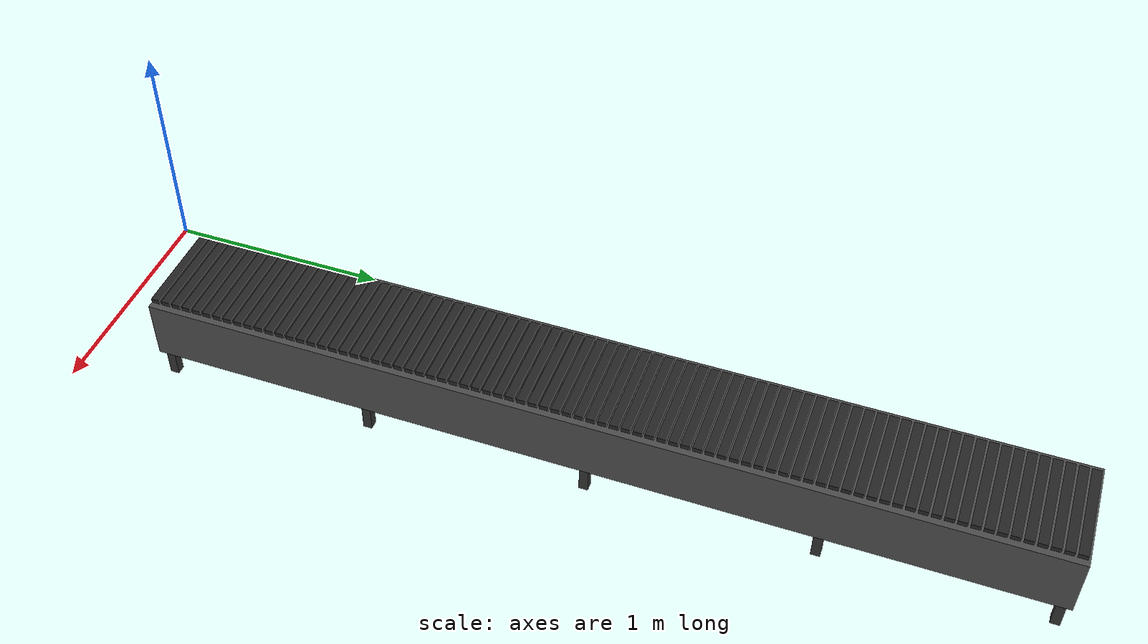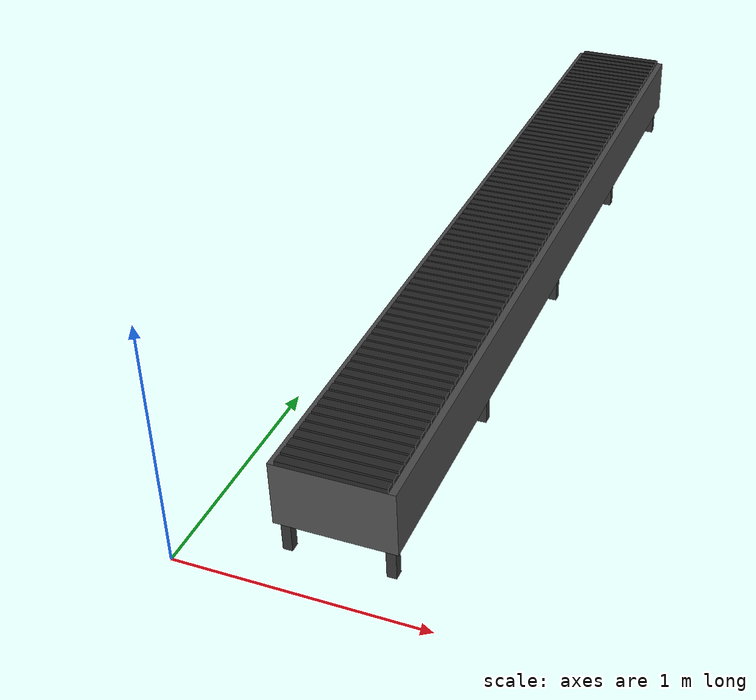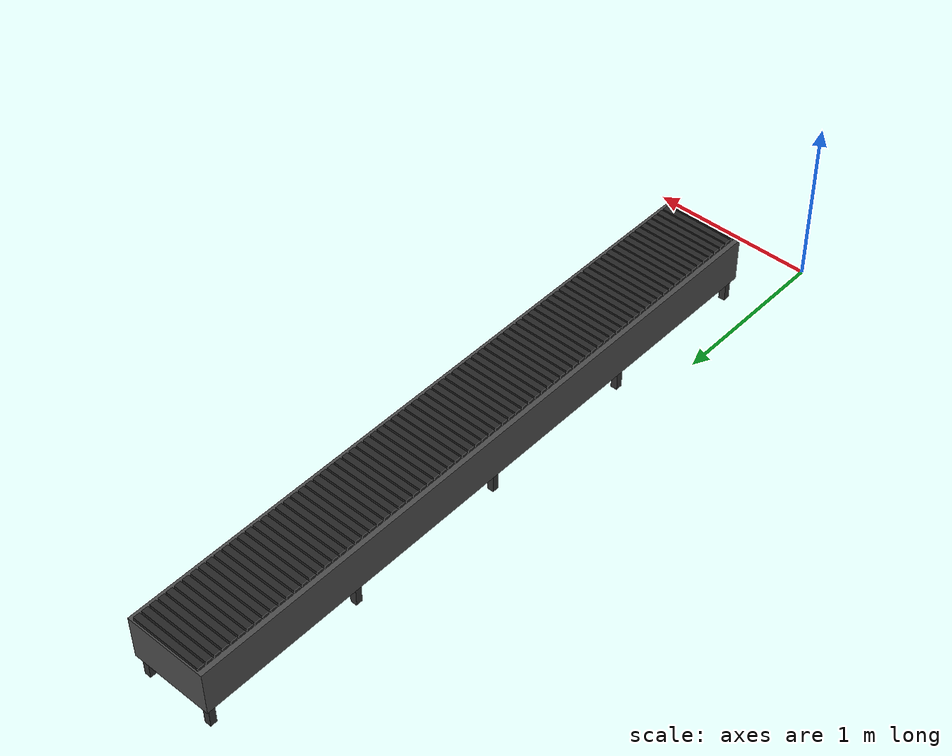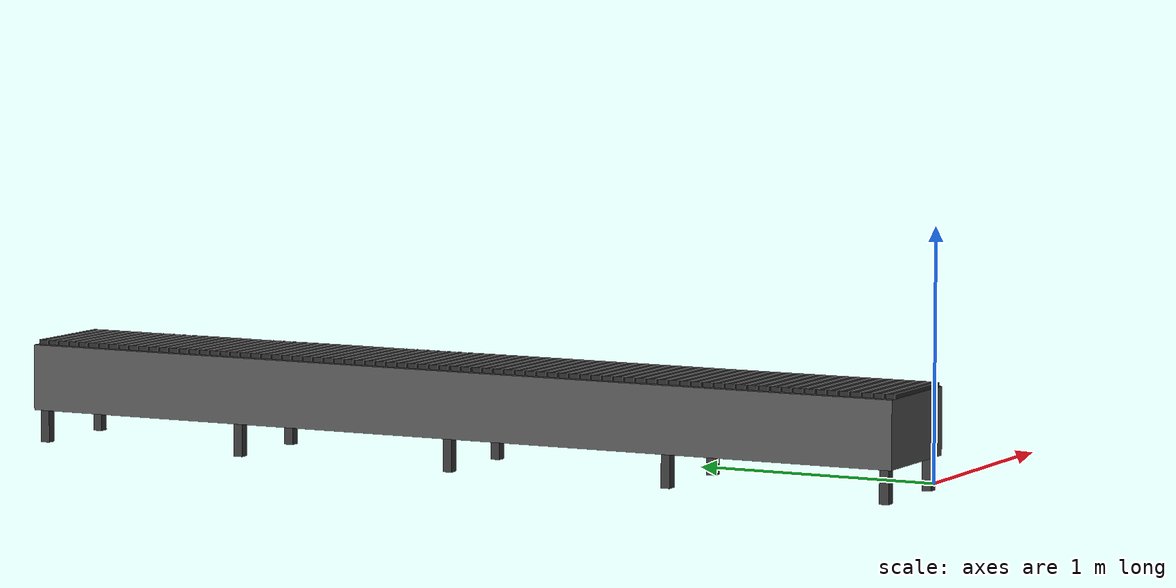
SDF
<?xml version="1.0" ?>
<sdf version="1.8">
  <model name="conveyor_belt">
    <!--
      InfiniteConveyor plugin — drives all slat joints and wraps them.
      Adjust belt_speed (m/s) to change conveyor speed.
    -->
    <plugin filename="InfiniteConveyorPlugin" name="conveyor::InfiniteConveyor">
      <belt_speed>-0.2</belt_speed>
      <end_x>4.32</end_x>
      <num_slats>80</num_slats>
      <slat_pitch>0.05</slat_pitch>
      <first_slat_x>0.31</first_slat_x>
      <slat_prefix>slat2</slat_prefix>
      <coordinate>y</coordinate>
      <cmd_vel_topic>/conveyor2/cmd_vel</cmd_vel_topic>
    </plugin>
      <model name="conveyor_frame_2">
    <self_collide>true</self_collide>
    <pose>0.5 0.29 0 0 0 1.5708</pose>
    <include merge="true">
      <uri>package://sml_description/models/conveyor_frame_4m</uri>
    </include>
  </model>
    <!-- Slat Models (using modular include) -->
    <model name="slat2_0">
      <pose>0.5 0.31 0.29 0 0 1.5708</pose>
      <include merge="true"><uri>package://sml_description/models/slat</uri></include>
      <joint name="slat2_0_joint" type="prismatic"><parent>world</parent><child>link</child><axis><xyz>1 0 0</xyz></axis></joint>
    </model>
    <model name="slat2_1">
      <pose>0.5 0.36 0.29 0 0 1.5708</pose>
      <include merge="true"><uri>package://sml_description/models/slat</uri></include>
      <joint name="slat2_1_joint" type="prismatic"><parent>world</parent><child>link</child><axis><xyz>1 0 0</xyz></axis></joint>
    </model>
    <model name="slat2_2">
      <pose>0.5 0.41 0.29 0 0 1.5708</pose>
      <include merge="true"><uri>package://sml_description/models/slat</uri></include>
      <joint name="slat2_2_joint" type="prismatic"><parent>world</parent><child>link</child><axis><xyz>1 0 0</xyz></axis></joint>
    </model>
    <model name="slat2_3">
      <pose>0.5 0.46 0.29 0 0 1.5708</pose>
      <include merge="true"><uri>package://sml_description/models/slat</uri></include>
      <joint name="slat2_3_joint" type="prismatic"><parent>world</parent><child>link</child><axis><xyz>1 0 0</xyz></axis></joint>
    </model>
    <model name="slat2_4">
      <pose>0.5 0.51 0.29 0 0 1.5708</pose>
      <include merge="true"><uri>package://sml_description/models/slat</uri></include>
      <joint name="slat2_4_joint" type="prismatic"><parent>world</parent><child>link</child><axis><xyz>1 0 0</xyz></axis></joint>
    </model>
    <model name="slat2_5">
      <pose>0.5 0.56 0.29 0 0 1.5708</pose>
      <include merge="true"><uri>package://sml_description/models/slat</uri></include>
      <joint name="slat2_5_joint" type="prismatic"><parent>world</parent><child>link</child><axis><xyz>1 0 0</xyz></axis></joint>
    </model>
    <model name="slat2_6">
      <pose>0.5 0.61 0.29 0 0 1.5708</pose>
      <include merge="true"><uri>package://sml_description/models/slat</uri></include>
      <joint name="slat2_6_joint" type="prismatic"><parent>world</parent><child>link</child><axis><xyz>1 0 0</xyz></axis></joint>
    </model>
    <model name="slat2_7">
      <pose>0.5 0.66 0.29 0 0 1.5708</pose>
      <include merge="true"><uri>package://sml_description/models/slat</uri></include>
      <joint name="slat2_7_joint" type="prismatic"><parent>world</parent><child>link</child><axis><xyz>1 0 0</xyz></axis></joint>
    </model>
    <model name="slat2_8">
      <pose>0.5 0.71 0.29 0 0 1.5708</pose>
      <include merge="true"><uri>package://sml_description/models/slat</uri></include>
      <joint name="slat2_8_joint" type="prismatic"><parent>world</parent><child>link</child><axis><xyz>1 0 0</xyz></axis></joint>
    </model>
    <model name="slat2_9">
      <pose>0.5 0.76 0.29 0 0 1.5708</pose>
      <include merge="true"><uri>package://sml_description/models/slat</uri></include>
      <joint name="slat2_9_joint" type="prismatic"><parent>world</parent><child>link</child><axis><xyz>1 0 0</xyz></axis></joint>
    </model>
    <model name="slat2_10">
      <pose>0.5 0.81 0.29 0 0 1.5708</pose>
      <include merge="true"><uri>package://sml_description/models/slat</uri></include>
      <joint name="slat2_10_joint" type="prismatic"><parent>world</parent><child>link</child><axis><xyz>1 0 0</xyz></axis></joint>
    </model>
    <model name="slat2_11">
      <pose>0.5 0.86 0.29 0 0 1.5708</pose>
      <include merge="true"><uri>package://sml_description/models/slat</uri></include>
      <joint name="slat2_11_joint" type="prismatic"><parent>world</parent><child>link</child><axis><xyz>1 0 0</xyz></axis></joint>
    </model>
    <model name="slat2_12">
      <pose>0.5 0.91 0.29 0 0 1.5708</pose>
      <include merge="true"><uri>package://sml_description/models/slat</uri></include>
      <joint name="slat2_12_joint" type="prismatic"><parent>world</parent><child>link</child><axis><xyz>1 0 0</xyz></axis></joint>
    </model>
    <model name="slat2_13">
      <pose>0.5 0.96 0.29 0 0 1.5708</pose>
      <include merge="true"><uri>package://sml_description/models/slat</uri></include>
      <joint name="slat2_13_joint" type="prismatic"><parent>world</parent><child>link</child><axis><xyz>1 0 0</xyz></axis></joint>
    </model>
    <model name="slat2_14">
      <pose>0.5 1.01 0.29 0 0 1.5708</pose>
      <include merge="true"><uri>package://sml_description/models/slat</uri></include>
      <joint name="slat2_14_joint" type="prismatic"><parent>world</parent><child>link</child><axis><xyz>1 0 0</xyz></axis></joint>
    </model>
    <model name="slat2_15">
      <pose>0.5 1.06 0.29 0 0 1.5708</pose>
      <include merge="true"><uri>package://sml_description/models/slat</uri></include>
      <joint name="slat2_15_joint" type="prismatic"><parent>world</parent><child>link</child><axis><xyz>1 0 0</xyz></axis></joint>
    </model>
    <model name="slat2_16">
      <pose>0.5 1.11 0.29 0 0 1.5708</pose>
      <include merge="true"><uri>package://sml_description/models/slat</uri></include>
      <joint name="slat2_16_joint" type="prismatic"><parent>world</parent><child>link</child><axis><xyz>1 0 0</xyz></axis></joint>
    </model>
    <model name="slat2_17">
      <pose>0.5 1.16 0.29 0 0 1.5708</pose>
      <include merge="true"><uri>package://sml_description/models/slat</uri></include>
      <joint name="slat2_17_joint" type="prismatic"><parent>world</parent><child>link</child><axis><xyz>1 0 0</xyz></axis></joint>
    </model>
    <model name="slat2_18">
      <pose>0.5 1.21 0.29 0 0 1.5708</pose>
      <include merge="true"><uri>package://sml_description/models/slat</uri></include>
      <joint name="slat2_18_joint" type="prismatic"><parent>world</parent><child>link</child><axis><xyz>1 0 0</xyz></axis></joint>
    </model>
    <model name="slat2_19">
      <pose>0.5 1.26 0.29 0 0 1.5708</pose>
      <include merge="true"><uri>package://sml_description/models/slat</uri></include>
      <joint name="slat2_19_joint" type="prismatic"><parent>world</parent><child>link</child><axis><xyz>1 0 0</xyz></axis></joint>
    </model>
    <model name="slat2_20">
      <pose>0.5 1.31 0.29 0 0 1.5708</pose>
      <include merge="true"><uri>package://sml_description/models/slat</uri></include>
      <joint name="slat2_20_joint" type="prismatic"><parent>world</parent><child>link</child><axis><xyz>1 0 0</xyz></axis></joint>
    </model>
    <model name="slat2_21">
      <pose>0.5 1.36 0.29 0 0 1.5708</pose>
      <include merge="true"><uri>package://sml_description/models/slat</uri></include>
      <joint name="slat2_21_joint" type="prismatic"><parent>world</parent><child>link</child><axis><xyz>1 0 0</xyz></axis></joint>
    </model>
    <model name="slat2_22">
      <pose>0.5 1.41 0.29 0 0 1.5708</pose>
      <include merge="true"><uri>package://sml_description/models/slat</uri></include>
      <joint name="slat2_22_joint" type="prismatic"><parent>world</parent><child>link</child><axis><xyz>1 0 0</xyz></axis></joint>
    </model>
    <model name="slat2_23">
      <pose>0.5 1.46 0.29 0 0 1.5708</pose>
      <include merge="true"><uri>package://sml_description/models/slat</uri></include>
      <joint name="slat2_23_joint" type="prismatic"><parent>world</parent><child>link</child><axis><xyz>1 0 0</xyz></axis></joint>
    </model>
    <model name="slat2_24">
      <pose>0.5 1.51 0.29 0 0 1.5708</pose>
      <include merge="true"><uri>package://sml_description/models/slat</uri></include>
      <joint name="slat2_24_joint" type="prismatic"><parent>world</parent><child>link</child><axis><xyz>1 0 0</xyz></axis></joint>
    </model>
    <model name="slat2_25">
      <pose>0.5 1.56 0.29 0 0 1.5708</pose>
      <include merge="true"><uri>package://sml_description/models/slat</uri></include>
      <joint name="slat2_25_joint" type="prismatic"><parent>world</parent><child>link</child><axis><xyz>1 0 0</xyz></axis></joint>
    </model>
    <model name="slat2_26">
      <pose>0.5 1.61 0.29 0 0 1.5708</pose>
      <include merge="true"><uri>package://sml_description/models/slat</uri></include>
      <joint name="slat2_26_joint" type="prismatic"><parent>world</parent><child>link</child><axis><xyz>1 0 0</xyz></axis></joint>
    </model>
    <model name="slat2_27">
      <pose>0.5 1.66 0.29 0 0 1.5708</pose>
      <include merge="true"><uri>package://sml_description/models/slat</uri></include>
      <joint name="slat2_27_joint" type="prismatic"><parent>world</parent><child>link</child><axis><xyz>1 0 0</xyz></axis></joint>
    </model>
    <model name="slat2_28">
      <pose>0.5 1.71 0.29 0 0 1.5708</pose>
      <include merge="true"><uri>package://sml_description/models/slat</uri></include>
      <joint name="slat2_28_joint" type="prismatic"><parent>world</parent><child>link</child><axis><xyz>1 0 0</xyz></axis></joint>
    </model>
    <model name="slat2_29">
      <pose>0.5 1.76 0.29 0 0 1.5708</pose>
      <include merge="true"><uri>package://sml_description/models/slat</uri></include>
      <joint name="slat2_29_joint" type="prismatic"><parent>world</parent><child>link</child><axis><xyz>1 0 0</xyz></axis></joint>
    </model>
    <model name="slat2_30">
      <pose>0.5 1.81 0.29 0 0 1.5708</pose>
      <include merge="true"><uri>package://sml_description/models/slat</uri></include>
      <joint name="slat2_30_joint" type="prismatic"><parent>world</parent><child>link</child><axis><xyz>1 0 0</xyz></axis></joint>
    </model>
    <model name="slat2_31">
      <pose>0.5 1.86 0.29 0 0 1.5708</pose>
      <include merge="true"><uri>package://sml_description/models/slat</uri></include>
      <joint name="slat2_31_joint" type="prismatic"><parent>world</parent><child>link</child><axis><xyz>1 0 0</xyz></axis></joint>
    </model>
    <model name="slat2_32">
      <pose>0.5 1.91 0.29 0 0 1.5708</pose>
      <include merge="true"><uri>package://sml_description/models/slat</uri></include>
      <joint name="slat2_32_joint" type="prismatic"><parent>world</parent><child>link</child><axis><xyz>1 0 0</xyz></axis></joint>
    </model>
    <model name="slat2_33">
      <pose>0.5 1.96 0.29 0 0 1.5708</pose>
      <include merge="true"><uri>package://sml_description/models/slat</uri></include>
      <joint name="slat2_33_joint" type="prismatic"><parent>world</parent><child>link</child><axis><xyz>1 0 0</xyz></axis></joint>
    </model>
    <model name="slat2_34">
      <pose>0.5 2.01 0.29 0 0 1.5708</pose>
      <include merge="true"><uri>package://sml_description/models/slat</uri></include>
      <joint name="slat2_34_joint" type="prismatic"><parent>world</parent><child>link</child><axis><xyz>1 0 0</xyz></axis></joint>
    </model>
    <model name="slat2_35">
      <pose>0.5 2.06 0.29 0 0 1.5708</pose>
      <include merge="true"><uri>package://sml_description/models/slat</uri></include>
      <joint name="slat2_35_joint" type="prismatic"><parent>world</parent><child>link</child><axis><xyz>1 0 0</xyz></axis></joint>
    </model>
    <model name="slat2_36">
      <pose>0.5 2.11 0.29 0 0 1.5708</pose>
      <include merge="true"><uri>package://sml_description/models/slat</uri></include>
      <joint name="slat2_36_joint" type="prismatic"><parent>world</parent><child>link</child><axis><xyz>1 0 0</xyz></axis></joint>
    </model>
    <model name="slat2_37">
      <pose>0.5 2.16 0.29 0 0 1.5708</pose>
      <include merge="true"><uri>package://sml_description/models/slat</uri></include>
      <joint name="slat2_37_joint" type="prismatic"><parent>world</parent><child>link</child><axis><xyz>1 0 0</xyz></axis></joint>
    </model>
    <model name="slat2_38">
      <pose>0.5 2.21 0.29 0 0 1.5708</pose>
      <include merge="true"><uri>package://sml_description/models/slat</uri></include>
      <joint name="slat2_38_joint" type="prismatic"><parent>world</parent><child>link</child><axis><xyz>1 0 0</xyz></axis></joint>
    </model>
    <model name="slat2_39">
      <pose>0.5 2.26 0.29 0 0 1.5708</pose>
      <include merge="true"><uri>package://sml_description/models/slat</uri></include>
      <joint name="slat2_39_joint" type="prismatic"><parent>world</parent><child>link</child><axis><xyz>1 0 0</xyz></axis></joint>
    </model>
    <model name="slat2_40">
      <pose>0.5 2.31 0.29 0 0 1.5708</pose>
      <include merge="true"><uri>package://sml_description/models/slat</uri></include>
      <joint name="slat2_40_joint" type="prismatic"><parent>world</parent><child>link</child><axis><xyz>1 0 0</xyz></axis></joint>
    </model>
    <model name="slat2_41">
      <pose>0.5 2.36 0.29 0 0 1.5708</pose>
      <include merge="true"><uri>package://sml_description/models/slat</uri></include>
      <joint name="slat2_41_joint" type="prismatic"><parent>world</parent><child>link</child><axis><xyz>1 0 0</xyz></axis></joint>
    </model>
    <model name="slat2_42">
      <pose>0.5 2.41 0.29 0 0 1.5708</pose>
      <include merge="true"><uri>package://sml_description/models/slat</uri></include>
      <joint name="slat2_42_joint" type="prismatic"><parent>world</parent><child>link</child><axis><xyz>1 0 0</xyz></axis></joint>
    </model>
    <model name="slat2_43">
      <pose>0.5 2.46 0.29 0 0 1.5708</pose>
      <include merge="true"><uri>package://sml_description/models/slat</uri></include>
      <joint name="slat2_43_joint" type="prismatic"><parent>world</parent><child>link</child><axis><xyz>1 0 0</xyz></axis></joint>
    </model>
    <model name="slat2_44">
      <pose>0.5 2.51 0.29 0 0 1.5708</pose>
      <include merge="true"><uri>package://sml_description/models/slat</uri></include>
      <joint name="slat2_44_joint" type="prismatic"><parent>world</parent><child>link</child><axis><xyz>1 0 0</xyz></axis></joint>
    </model>
    <model name="slat2_45">
      <pose>0.5 2.56 0.29 0 0 1.5708</pose>
      <include merge="true"><uri>package://sml_description/models/slat</uri></include>
      <joint name="slat2_45_joint" type="prismatic"><parent>world</parent><child>link</child><axis><xyz>1 0 0</xyz></axis></joint>
    </model>
    <model name="slat2_46">
      <pose>0.5 2.61 0.29 0 0 1.5708</pose>
      <include merge="true"><uri>package://sml_description/models/slat</uri></include>
      <joint name="slat2_46_joint" type="prismatic"><parent>world</parent><child>link</child><axis><xyz>1 0 0</xyz></axis></joint>
    </model>
    <model name="slat2_47">
      <pose>0.5 2.66 0.29 0 0 1.5708</pose>
      <include merge="true"><uri>package://sml_description/models/slat</uri></include>
      <joint name="slat2_47_joint" type="prismatic"><parent>world</parent><child>link</child><axis><xyz>1 0 0</xyz></axis></joint>
    </model>
    <model name="slat2_48">
      <pose>0.5 2.71 0.29 0 0 1.5708</pose>
      <include merge="true"><uri>package://sml_description/models/slat</uri></include>
      <joint name="slat2_48_joint" type="prismatic"><parent>world</parent><child>link</child><axis><xyz>1 0 0</xyz></axis></joint>
    </model>
    <model name="slat2_49">
      <pose>0.5 2.76 0.29 0 0 1.5708</pose>
      <include merge="true"><uri>package://sml_description/models/slat</uri></include>
      <joint name="slat2_49_joint" type="prismatic"><parent>world</parent><child>link</child><axis><xyz>1 0 0</xyz></axis></joint>
    </model>
    <model name="slat2_50">
      <pose>0.5 2.81 0.29 0 0 1.5708</pose>
      <include merge="true"><uri>package://sml_description/models/slat</uri></include>
      <joint name="slat2_50_joint" type="prismatic"><parent>world</parent><child>link</child><axis><xyz>1 0 0</xyz></axis></joint>
    </model>
    <model name="slat2_51">
      <pose>0.5 2.86 0.29 0 0 1.5708</pose>
      <include merge="true"><uri>package://sml_description/models/slat</uri></include>
      <joint name="slat2_51_joint" type="prismatic"><parent>world</parent><child>link</child><axis><xyz>1 0 0</xyz></axis></joint>
    </model>
    <model name="slat2_52">
      <pose>0.5 2.91 0.29 0 0 1.5708</pose>
      <include merge="true"><uri>package://sml_description/models/slat</uri></include>
      <joint name="slat2_52_joint" type="prismatic"><parent>world</parent><child>link</child><axis><xyz>1 0 0</xyz></axis></joint>
    </model>
    <model name="slat2_53">
      <pose>0.5 2.96 0.29 0 0 1.5708</pose>
      <include merge="true"><uri>package://sml_description/models/slat</uri></include>
      <joint name="slat2_53_joint" type="prismatic"><parent>world</parent><child>link</child><axis><xyz>1 0 0</xyz></axis></joint>
    </model>
    <model name="slat2_54">
      <pose>0.5 3.01 0.29 0 0 1.5708</pose>
      <include merge="true"><uri>package://sml_description/models/slat</uri></include>
      <joint name="slat2_54_joint" type="prismatic"><parent>world</parent><child>link</child><axis><xyz>1 0 0</xyz></axis></joint>
    </model>
    <model name="slat2_55">
      <pose>0.5 3.06 0.29 0 0 1.5708</pose>
      <include merge="true"><uri>package://sml_description/models/slat</uri></include>
      <joint name="slat2_55_joint" type="prismatic"><parent>world</parent><child>link</child><axis><xyz>1 0 0</xyz></axis></joint>
    </model>
    <model name="slat2_56">
      <pose>0.5 3.11 0.29 0 0 1.5708</pose>
      <include merge="true"><uri>package://sml_description/models/slat</uri></include>
      <joint name="slat2_56_joint" type="prismatic"><parent>world</parent><child>link</child><axis><xyz>1 0 0</xyz></axis></joint>
    </model>
    <model name="slat2_57">
      <pose>0.5 3.16 0.29 0 0 1.5708</pose>
      <include merge="true"><uri>package://sml_description/models/slat</uri></include>
      <joint name="slat2_57_joint" type="prismatic"><parent>world</parent><child>link</child><axis><xyz>1 0 0</xyz></axis></joint>
    </model>
    <model name="slat2_58">
      <pose>0.5 3.21 0.29 0 0 1.5708</pose>
      <include merge="true"><uri>package://sml_description/models/slat</uri></include>
      <joint name="slat2_58_joint" type="prismatic"><parent>world</parent><child>link</child><axis><xyz>1 0 0</xyz></axis></joint>
    </model>
    <model name="slat2_59">
      <pose>0.5 3.26 0.29 0 0 1.5708</pose>
      <include merge="true"><uri>package://sml_description/models/slat</uri></include>
      <joint name="slat2_59_joint" type="prismatic"><parent>world</parent><child>link</child><axis><xyz>1 0 0</xyz></axis></joint>
    </model>
    <model name="slat2_60">
      <pose>0.5 3.31 0.29 0 0 1.5708</pose>
      <include merge="true"><uri>package://sml_description/models/slat</uri></include>
      <joint name="slat2_60_joint" type="prismatic"><parent>world</parent><child>link</child><axis><xyz>1 0 0</xyz></axis></joint>
    </model>
    <model name="slat2_61">
      <pose>0.5 3.36 0.29 0 0 1.5708</pose>
      <include merge="true"><uri>package://sml_description/models/slat</uri></include>
      <joint name="slat2_61_joint" type="prismatic"><parent>world</parent><child>link</child><axis><xyz>1 0 0</xyz></axis></joint>
    </model>
    <model name="slat2_62">
      <pose>0.5 3.41 0.29 0 0 1.5708</pose>
      <include merge="true"><uri>package://sml_description/models/slat</uri></include>
      <joint name="slat2_62_joint" type="prismatic"><parent>world</parent><child>link</child><axis><xyz>1 0 0</xyz></axis></joint>
    </model>
    <model name="slat2_63">
      <pose>0.5 3.46 0.29 0 0 1.5708</pose>
      <include merge="true"><uri>package://sml_description/models/slat</uri></include>
      <joint name="slat2_63_joint" type="prismatic"><parent>world</parent><child>link</child><axis><xyz>1 0 0</xyz></axis></joint>
    </model>
    <model name="slat2_64">
      <pose>0.5 3.51 0.29 0 0 1.5708</pose>
      <include merge="true"><uri>package://sml_description/models/slat</uri></include>
      <joint name="slat2_64_joint" type="prismatic"><parent>world</parent><child>link</child><axis><xyz>1 0 0</xyz></axis></joint>
    </model>
    <model name="slat2_65">
      <pose>0.5 3.56 0.29 0 0 1.5708</pose>
      <include merge="true"><uri>package://sml_description/models/slat</uri></include>
      <joint name="slat2_65_joint" type="prismatic"><parent>world</parent><child>link</child><axis><xyz>1 0 0</xyz></axis></joint>
    </model>
    <model name="slat2_66">
      <pose>0.5 3.61 0.29 0 0 1.5708</pose>
      <include merge="true"><uri>package://sml_description/models/slat</uri></include>
      <joint name="slat2_66_joint" type="prismatic"><parent>world</parent><child>link</child><axis><xyz>1 0 0</xyz></axis></joint>
    </model>
    <model name="slat2_67">
      <pose>0.5 3.66 0.29 0 0 1.5708</pose>
      <include merge="true"><uri>package://sml_description/models/slat</uri></include>
      <joint name="slat2_67_joint" type="prismatic"><parent>world</parent><child>link</child><axis><xyz>1 0 0</xyz></axis></joint>
    </model>
    <model name="slat2_68">
      <pose>0.5 3.71 0.29 0 0 1.5708</pose>
      <include merge="true"><uri>package://sml_description/models/slat</uri></include>
      <joint name="slat2_68_joint" type="prismatic"><parent>world</parent><child>link</child><axis><xyz>1 0 0</xyz></axis></joint>
    </model>
    <model name="slat2_69">
      <pose>0.5 3.76 0.29 0 0 1.5708</pose>
      <include merge="true"><uri>package://sml_description/models/slat</uri></include>
      <joint name="slat2_69_joint" type="prismatic"><parent>world</parent><child>link</child><axis><xyz>1 0 0</xyz></axis></joint>
    </model>
    <model name="slat2_70">
      <pose>0.5 3.81 0.29 0 0 1.5708</pose>
      <include merge="true"><uri>package://sml_description/models/slat</uri></include>
      <joint name="slat2_70_joint" type="prismatic"><parent>world</parent><child>link</child><axis><xyz>1 0 0</xyz></axis></joint>
    </model>
    <model name="slat2_71">
      <pose>0.5 3.86 0.29 0 0 1.5708</pose>
      <include merge="true"><uri>package://sml_description/models/slat</uri></include>
      <joint name="slat2_71_joint" type="prismatic"><parent>world</parent><child>link</child><axis><xyz>1 0 0</xyz></axis></joint>
    </model>
    <model name="slat2_72">
      <pose>0.5 3.91 0.29 0 0 1.5708</pose>
      <include merge="true"><uri>package://sml_description/models/slat</uri></include>
      <joint name="slat2_72_joint" type="prismatic"><parent>world</parent><child>link</child><axis><xyz>1 0 0</xyz></axis></joint>
    </model>
    <model name="slat2_73">
      <pose>0.5 3.96 0.29 0 0 1.5708</pose>
      <include merge="true"><uri>package://sml_description/models/slat</uri></include>
      <joint name="slat2_73_joint" type="prismatic"><parent>world</parent><child>link</child><axis><xyz>1 0 0</xyz></axis></joint>
    </model>
    <model name="slat2_74">
      <pose>0.5 4.01 0.29 0 0 1.5708</pose>
      <include merge="true"><uri>package://sml_description/models/slat</uri></include>
      <joint name="slat2_74_joint" type="prismatic"><parent>world</parent><child>link</child><axis><xyz>1 0 0</xyz></axis></joint>
    </model>
    <model name="slat2_75">
      <pose>0.5 4.06 0.29 0 0 1.5708</pose>
      <include merge="true"><uri>package://sml_description/models/slat</uri></include>
      <joint name="slat2_75_joint" type="prismatic"><parent>world</parent><child>link</child><axis><xyz>1 0 0</xyz></axis></joint>
    </model>
    <model name="slat2_76">
      <pose>0.5 4.11 0.29 0 0 1.5708</pose>
      <include merge="true"><uri>package://sml_description/models/slat</uri></include>
      <joint name="slat2_76_joint" type="prismatic"><parent>world</parent><child>link</child><axis><xyz>1 0 0</xyz></axis></joint>
    </model>
    <model name="slat2_77">
      <pose>0.5 4.16 0.29 0 0 1.5708</pose>
      <include merge="true"><uri>package://sml_description/models/slat</uri></include>
      <joint name="slat2_77_joint" type="prismatic"><parent>world</parent><child>link</child><axis><xyz>1 0 0</xyz></axis></joint>
    </model>
    <model name="slat2_78">
      <pose>0.5 4.21 0.29 0 0 1.5708</pose>
      <include merge="true"><uri>package://sml_description/models/slat</uri></include>
      <joint name="slat2_78_joint" type="prismatic"><parent>world</parent><child>link</child><axis><xyz>1 0 0</xyz></axis></joint>
    </model>
    <model name="slat2_79">
      <pose>0.5 4.26 0.29 0 0 1.5708</pose>
      <include merge="true"><uri>package://sml_description/models/slat</uri></include>
      <joint name="slat2_79_joint" type="prismatic"><parent>world</parent><child>link</child><axis><xyz>1 0 0</xyz></axis></joint>
    </model>
  </model>
</sdf>
